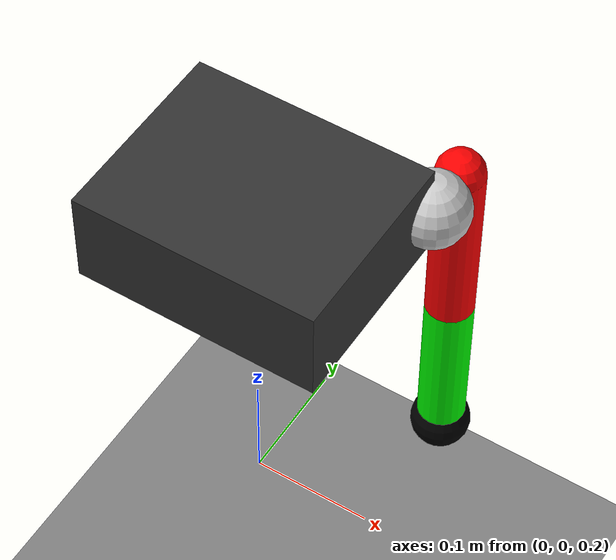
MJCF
<mujoco model="pata_12_dof_unitree">
    <option gravity="0 0 -9.81" timestep="0.01"/>

    <worldbody>
        <geom name="suelo" type="plane" size="2 2 .1" rgba="0.5 0.5 0.5 1"/>
        <light diffuse=".8 .8 .8" pos="0 0 3" dir="0 0 -1"/>

        <!-- BASE DEL ROBOT (Torso) -->
        <body name="torso" pos="0 0 0.5">
            <geom type="box" size="0.1 0.08 0.04" rgba="0.2 0.2 0.2 1"/>

            <!-- 1. ARTICULACIÓN DE ABDUCCIÓN (Roll) -->
            <!-- Eje X: 1 0 0 (Permite abrir la pata hacia los lados) -->
            <body name="hip_roll_link" pos="0.1 0.08 0">
                <joint name="cadera_roll" type="hinge" axis="1 0 0" range="-30 30" damping="0.5"/>
                <geom type="sphere" size="0.03" rgba="0.8 0.8 0.8 1"/> <!-- Motor 1 visual -->

                <!-- 2. ARTICULACIÓN DE FLEXIÓN (Pitch) -->
                <!-- Eje Y: 0 1 0 (Mueve el muslo adelante/atrás) -->
                <body name="muslo" pos="0 0.04 0">
                    <joint name="cadera_pitch" type="hinge" axis="0 1 0" range="-60 60" damping="0.5"/>
                    <geom type="capsule" size="0.02" fromto="0 0 0 0 0 -0.15" rgba="1 0 0 1"/>

                    <!-- 3. ARTICULACIÓN DE RODILLA (Knee Pitch) -->
                    <!-- Eje Y: 0 1 0 (Dobla la rodilla) -->
                    <body name="espinilla" pos="0 0 -0.15">
                        <joint name="rodilla" type="hinge" axis="0 1 0" range="-100 0" damping="0.5"/>
                        <geom type="capsule" size="0.02" fromto="0 0 0 0 0 -0.15" rgba="0 1 0 1"/>

                        <!-- PIE -->
                        <body name="pie" pos="0 0 -0.15">
                            <geom type="sphere" size="0.025" rgba="0 0 0 1" friction="1 0.005 0.0001"/>
                        </body>
                    </body>
                </body>
            </body>
        </body>
    </worldbody>

    <!-- ACTUADORES: Los 3 motores de esta pata -->
    <actuator>
    <!--
        kp: es la fuerza del servo.
        forcerange: limita la fuerza máxima para que el motor no sea "infinito"
        (ajústalo según el torque de tus Feetech).
        -->
        <position name="srv_roll" joint="cadera_roll" kp="20" kv="1.5" ctrlrange="-0.6 0.6" forcerange="-1.9 1.9"/>
	<position name="srv_pitch" joint="cadera_pitch" kp="20" kv="1.5" ctrlrange="-1.2 1.2" forcerange="-1.9 1.9"/>
	<position name="srv_rodilla" joint="rodilla" kp="20" kv="1.5" ctrlrange="-1.8 0" forcerange="-1.9 1.9"/>
    </actuator>

</mujoco>
